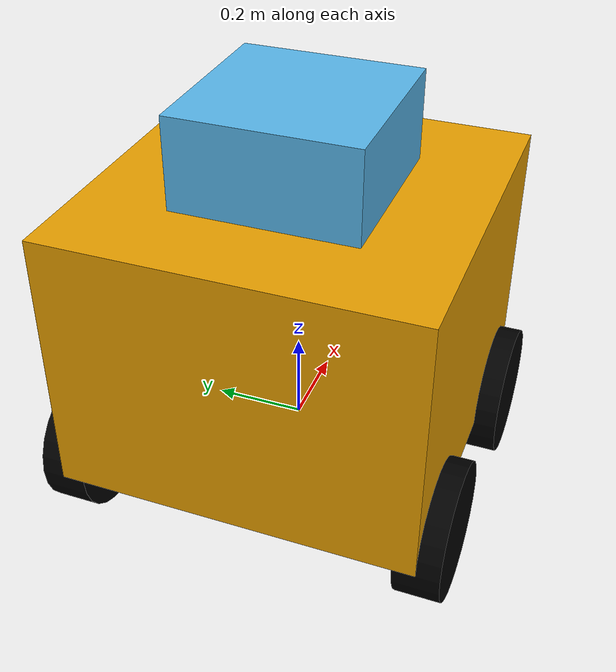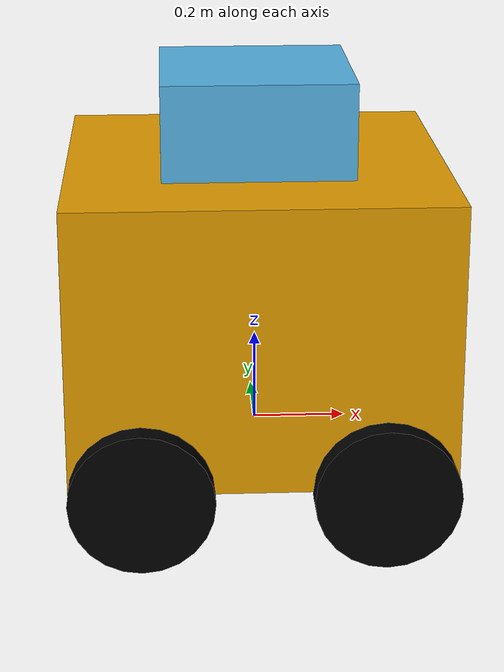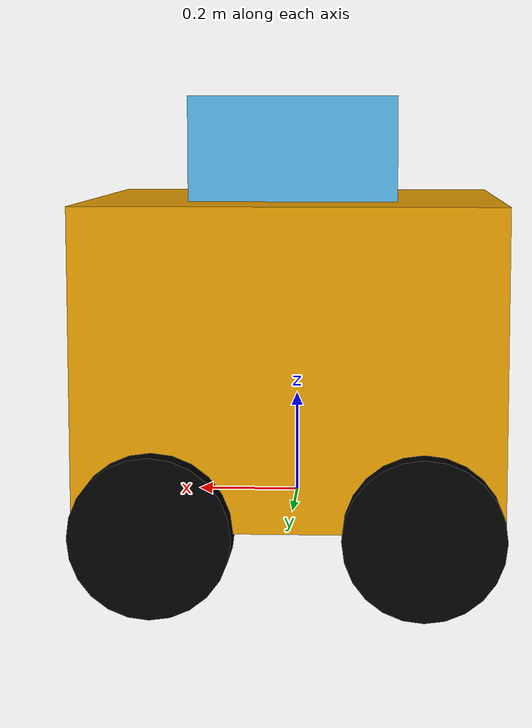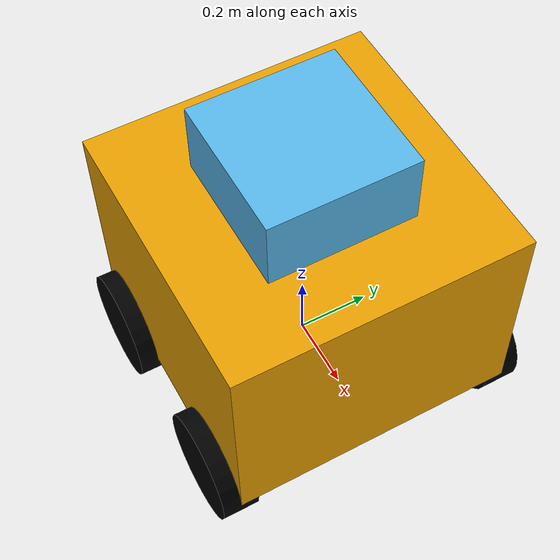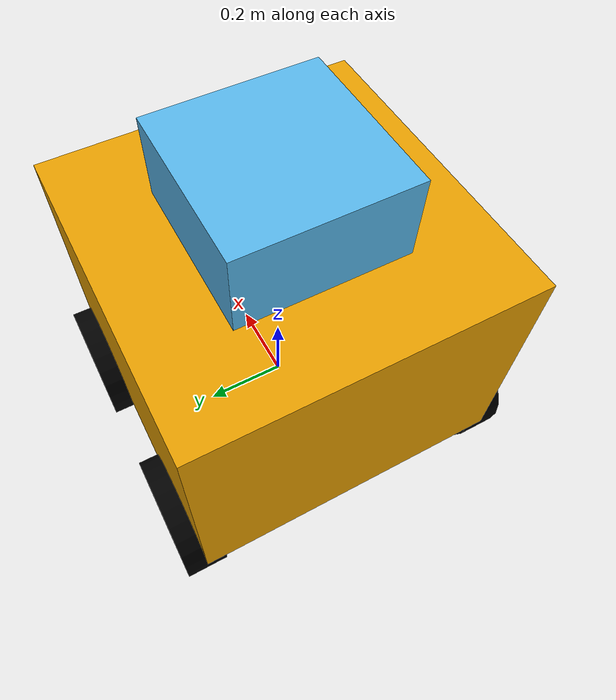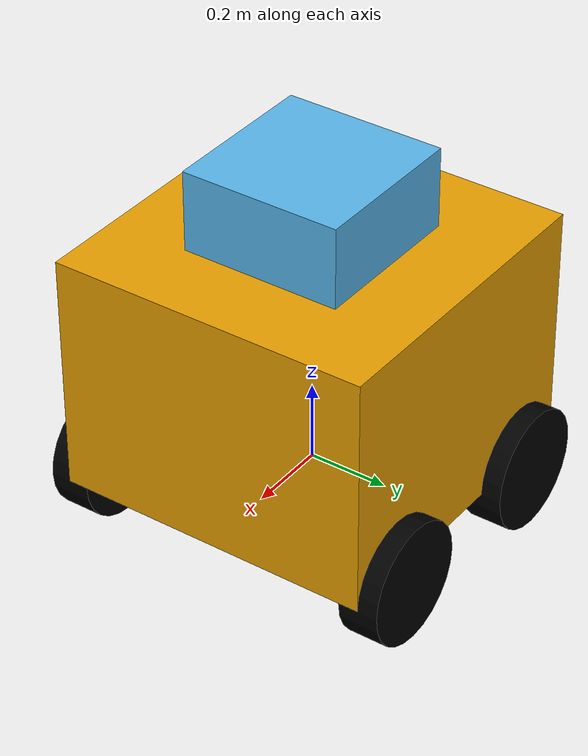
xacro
<?xml version="1.0"?>

<robot name="vehicle" xmlns:xacro="http://www.ros.org/wiki/xacro">

	<link name="base_link">
		<visual>
			<origin rpy="0 0 0" xyz="0 0 0.3"/>
			<geometry>
				<box size="0.8 0.8 0.6"/>
			</geometry>
		</visual>
	</link>
	<joint name="base_link__link1" type="fixed">
		<origin rpy="0 0 0" xyz="0 0 0.6"/>
		<parent link="base_link"/>
		<child link="link1"/>
	</joint>
	<link name="link1">
                <visual>
                        <origin rpy="0 0 0" xyz="0 0 0"/>
                        <geometry>
                                <box size="0.4 0.4 0.4" />
                        </geometry>
                </visual>
        </link>

	<xacro:property name="side1" value="rear_right"/>
	<link name="wheel_${side1}_link">
		<intertial>
			<origin xyz="0.0 0.0 0.0" rpy="0.0 0.0 0.0"/>
			<mass value="1.0"/>
			<inertia ixx="${(1/12)*(3*0.15*0.15+0.1*0.1)}" ixy="0.0" ixz="0.0" iyy="${(1/12)*(3*0.15*0.15+0.1*0.1)}" iyz="0.0" izz="${(1/2)*(0.15*0.15)}"/>
		</intertial>
		<visual name="">
			<origin xyz="0.0 0.0 0.0" rpy="0.0 0.0 0.0"/>
			<geometry>
				<cylinder radius="0.15" length="0.1"/>
			</geometry>
			<material name="black">
				<color rgba="0.0 0.0 0.0 1.0"/>
				<texture filename=""/>
			</material>
		</visual>
		<collision>
			<origin xyz="0.0 0.0 0.0" rpy="0.0 0.0 0.0"/>
			<geometry>
				<cylinder radius="0.15" length="0.1"/>
			</geometry>
		</collision>
	</link>
	<joint name="wheel_${side1}_joint" type="continuous">
		<origin xyz="-0.250 -0.40 0.0" rpy="1.57 0.0 0.0"/>
		<parent link="base_link"/>
		<child link="wheel_${side1}_link"/>
		<axis xyz="0.0 0.0 1.0"/>
	</joint>

	<xacro:property name="side2" value="rear_left"/>
	<link name="wheel_${side2}_link">
		<intertial>
			<origin xyz="0.0 0.0 0.0" rpy="0.0 0.0 0.0"/>
			<mass value="1.0"/>
			<inertia ixx="${(1/12)*(3*0.15*0.15+0.1*0.1)}" ixy="0.0" ixz="0.0" iyy="${(1/12)*(3*0.15*0.15+0.1*0.1)}" iyz="0.0" izz="${(1/2)*(0.15*0.15)}"/>
		</intertial>
		<visual name="">
			<origin xyz="0.0 0.0 0.0" rpy="0.0 0.0 0.0"/>
			<geometry>
				<cylinder radius="0.15" length="0.1"/>
			</geometry>
			<material name="black">
				<color rgba="0.0 0.0 0.0 1.0"/>
				<texture filename=""/>
			</material>
		</visual>
		<collision>
			<origin xyz="0.0 0.0 0.0" rpy="0.0 0.0 0.0"/>
			<geometry>
				<cylinder radius="0.15" length="0.1"/>
			</geometry>
		</collision>
	</link>
	<joint name="wheel_${side2}_joint" type="continuous">
		<origin xyz="-0.250 0.40 0.0" rpy="1.57 0.0 0.0"/>
		<parent link="base_link"/>
		<child link="wheel_${side2}_link"/>
		<axis xyz="0.0 0.0 1.0"/>
	</joint>

	<xacro:property name="side3" value="front_right"/>
	<link name="wheel_${side3}_link">
		<intertial>
			<origin xyz="0.0 0.0 0.0" rpy="0.0 0.0 0.0"/>
			<mass value="1.0"/>
			<inertia ixx="${(1/12)*(3*0.15*0.15+0.1*0.1)}" ixy="0.0" ixz="0.0" iyy="${(1/12)*(3*0.15*0.15+0.1*0.1)}" iyz="0.0" izz="${(1/2)*(0.15*0.15)}"/>
		</intertial>
		<visual name="">
			<origin xyz="0.0 0.0 0.0" rpy="0.0 0.0 0.0"/>
			<geometry>
				<cylinder radius="0.15" length="0.1"/>
			</geometry>
			<material name="black">
				<color rgba="0.0 0.0 0.0 1.0"/>
				<texture filename=""/>
			</material>
		</visual>
		<collision>
			<origin xyz="0.0 0.0 0.0" rpy="0.0 0.0 0.0"/>
			<geometry>
				<cylinder radius="0.15" length="0.1"/>
			</geometry>
		</collision>
	</link>
	<joint name="wheel_${side3}_joint" type="continuous">
		<origin xyz="0.250 -0.40 0.0" rpy="1.57 0.0 0.0"/>
		<parent link="base_link"/>
		<child link="wheel_${side3}_link"/>
		<axis xyz="0.0 0.0 1.0"/>
	</joint>

	<xacro:property name="side4" value="front_left"/>
	<link name="wheel_${side4}_link">
		<intertial>
			<origin xyz="0.0 0.0 0.0" rpy="0.0 0.0 0.0"/>
			<mass value="1.0"/>
			<inertia ixx="${(1/12)*(3*0.15*0.15+0.1*0.1)}" ixy="0.0" ixz="0.0" iyy="${(1/12)*(3*0.15*0.15+0.1*0.1)}" iyz="0.0" izz="${(1/2)*(0.15*0.15)}"/>
		</intertial>
		<visual name="">
			<origin xyz="0.0 0.0 0.0" rpy="0.0 0.0 0.0"/>
			<geometry>
				<cylinder radius="0.15" length="0.1"/>
			</geometry>
			<material name="black">
				<color rgba="0.0 0.0 0.0 1.0"/>
				<texture filename=""/>
			</material>
		</visual>
		<collision>
			<origin xyz="0.0 0.0 0.0" rpy="0.0 0.0 0.0"/>
			<geometry>
				<cylinder radius="0.15" length="0.1"/>
			</geometry>
		</collision>
	</link>
	<joint name="wheel_${side4}_joint" type="continuous">
		<origin xyz="0.250 0.40 0.0" rpy="1.57 0.0 0.0"/>
		<parent link="base_link"/>
		<child link="wheel_${side4}_link"/>
		<axis xyz="0.0 0.0 1.0"/>
	</joint>
</robot>
